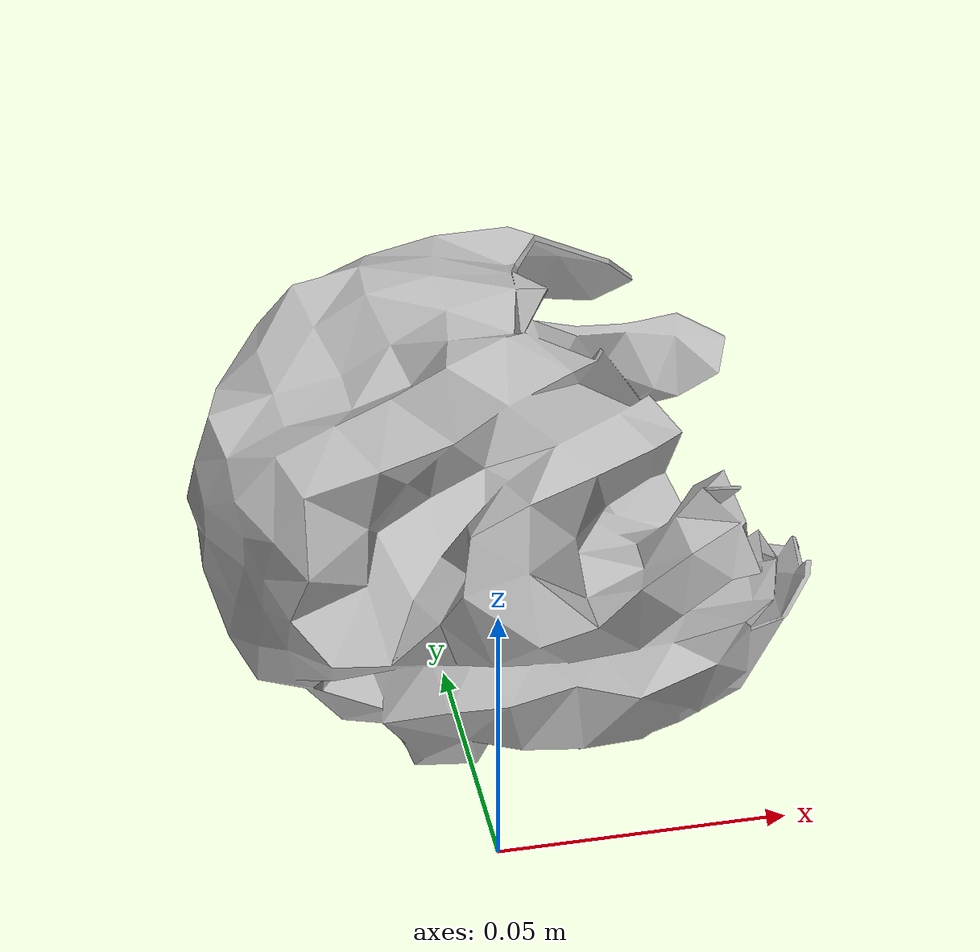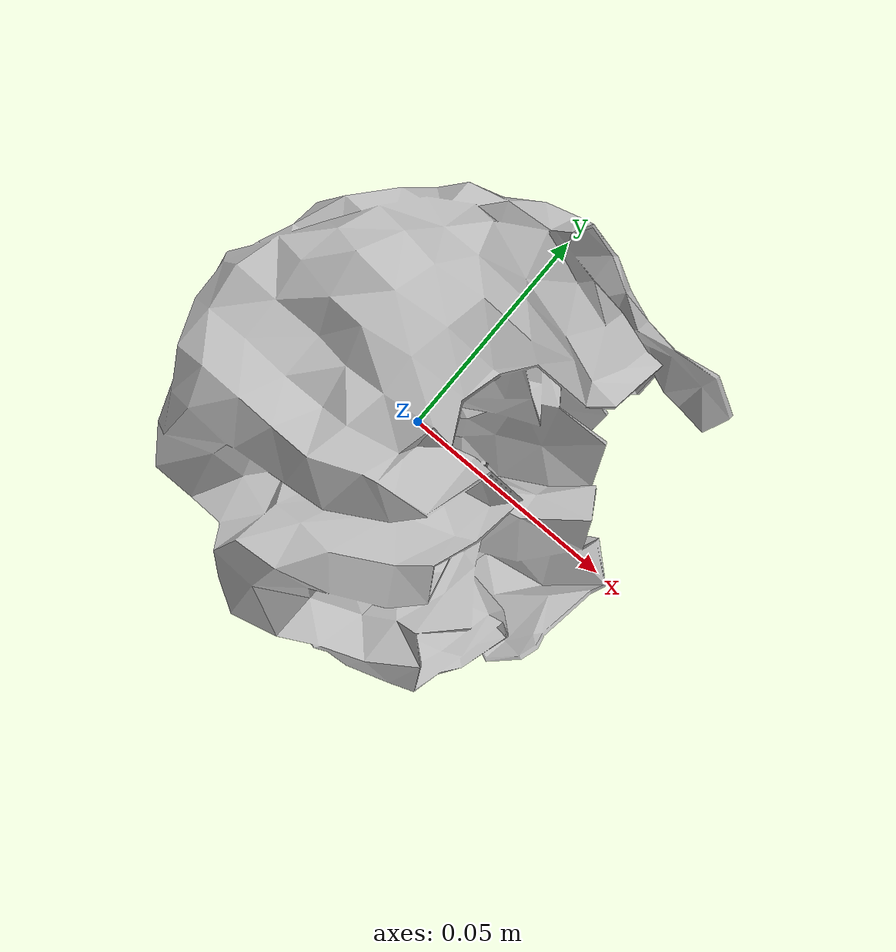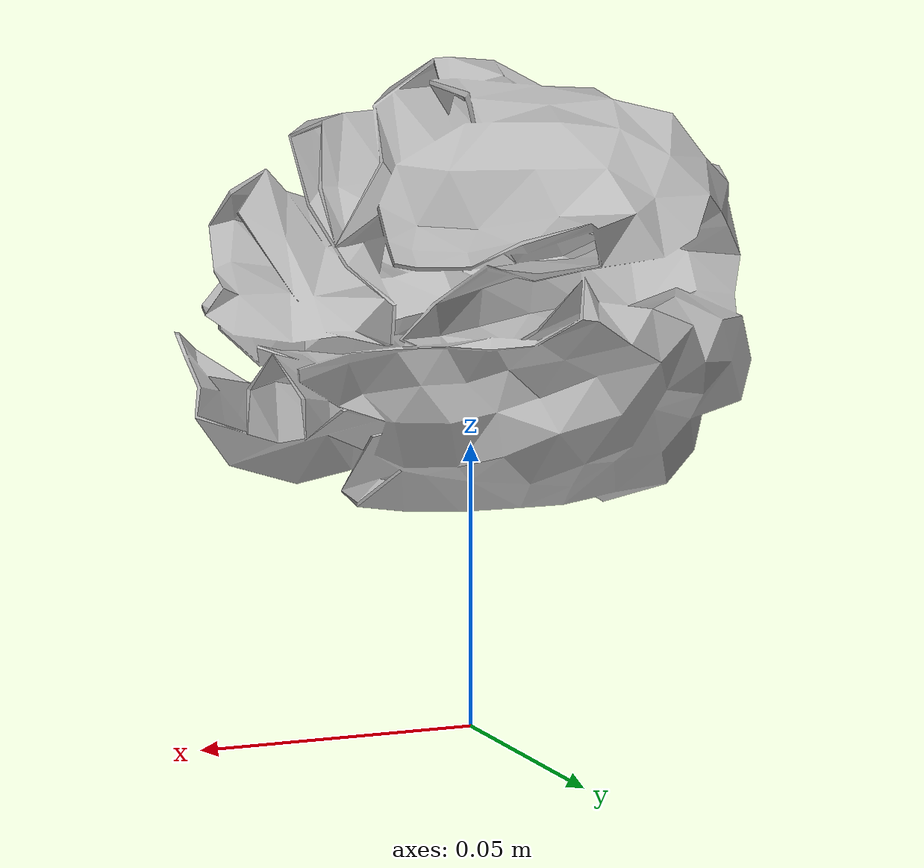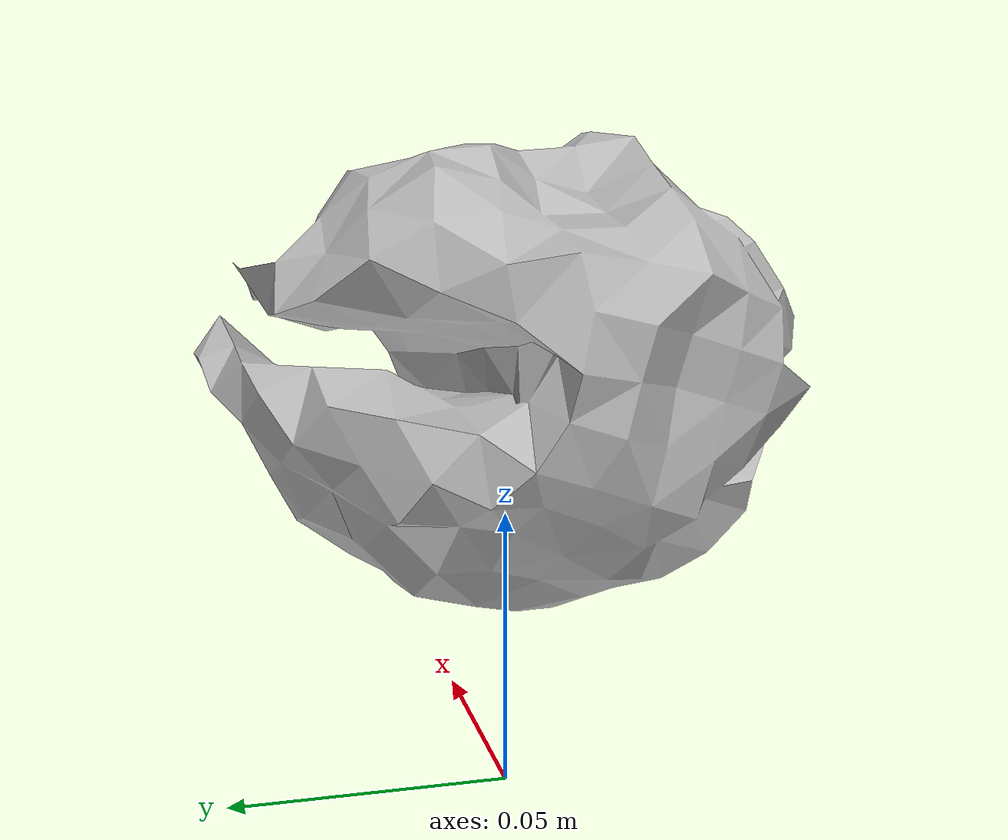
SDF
<?xml version="1.0"?>
<sdf version="1.6">
  <model name="trash_paper_crumple_01">
    <static>true</static>
    <pose>0 0 0.0388 0 0 0</pose>
    <link name="link">
      <visual name="visual">
        <cast_shadows>false</cast_shadows>
        <geometry>
          <mesh>
            <uri>model://trash_paper_crumple_01/meshes/trash_paper_crumple_01.dae</uri>
            <scale>1.0000 1.0000 1.0000</scale>
          </mesh>
        </geometry>
      </visual>
    </link>
  </model>
</sdf>
